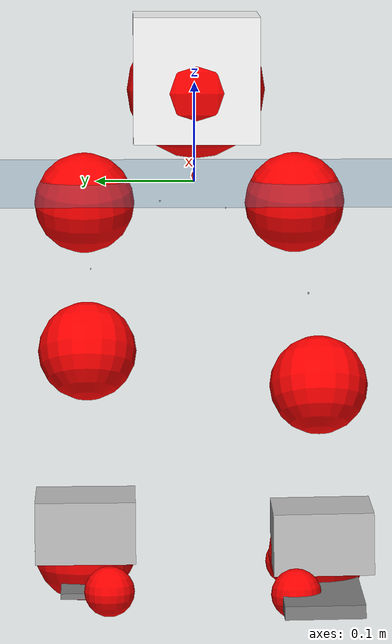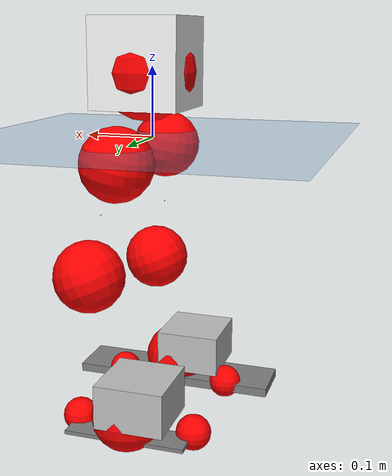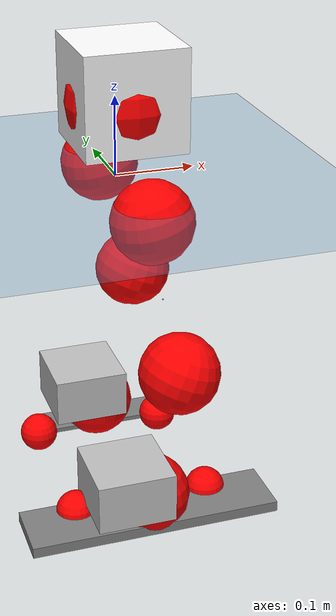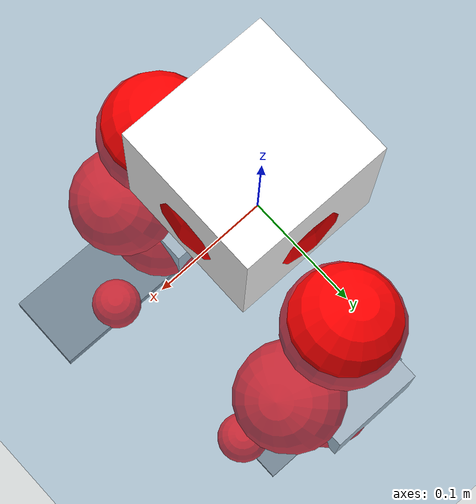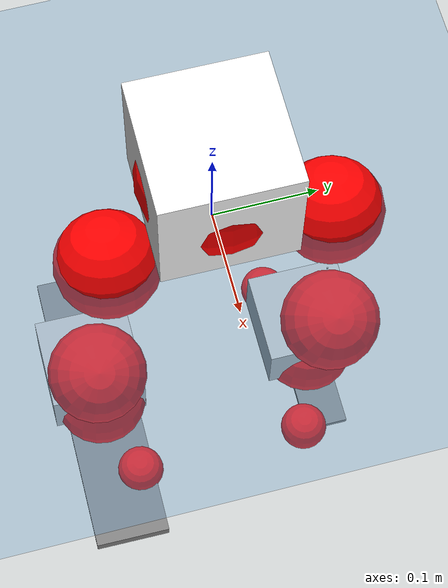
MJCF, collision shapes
<mujoco model="pi_12dof_release_v1">
  <compiler angle="radian" assetdir="assets" balanceinertia="true" inertiafromgeom="false"/>

  <option timestep="0.005" density="1.2" viscosity="2e-05"/>

  <size nkey="1"/>

  <visual>
    <quality shadowsize="8192"/>
    <map shadowclip="0.5"/>
  </visual>

  <default>
    <default class="/">
      <joint armature="0.01" damping="0.01" frictionloss="0.01"/>
      <geom contype="0" conaffinity="0" group="1" solref="-1000 -80"/>
      <site size="0.01 0.005 0.005" group="5"/>
      <general forcelimited="true" biastype="affine" gainprm="20" biasprm="0 -20 -0.5"/>
      <default class="foot">
        <geom size="0.0845 0.036 0.005" type="box" condim="6" group="4" priority="1" friction="0.9 0.2 0.2" solimp="0.015 1 0.005"/>
      </default>
      <default class="reward_collision_sphere">
        <geom group="5" rgba="1 0 0 1"/>
      </default>
    </default>
  </default>

  <asset>
    <texture type="skybox" colorspace="auto" name="//unnamed_texture_0" builtin="gradient" rgb1="0.95 0.95 0.95" rgb2="0.95 0.95 0.95" width="100" height="600"/>
    <texture type="2d" colorspace="auto" name="texplane" builtin="checker" rgb1="0.345 0.575 0.748" rgb2="0.345 0.575 0.748" markrgb="1 1 1" width="512" height="512"/>
    <material name="MatPlane" class="/" texture="texplane" texuniform="true" texrepeat="2 2" specular="0.9"/>
    <mesh name="baselink_1" class="/" file="baselink_1.STL"/>
    <mesh name="r_hip_pitch_link" class="/" file="r_hip_pitch_link.STL"/>
    <mesh name="r_hip_roll_link" class="/" file="r_hip_roll_link.STL"/>
    <mesh name="r_thigh_link" class="/" file="r_thigh_link.STL"/>
    <mesh name="r_calf_link" class="/" file="r_calf_link.STL"/>
    <mesh name="r_ankle_pitch_link" class="/" file="r_ankle_pitch_link.STL"/>
    <mesh name="r_ankle_roll_link" class="/" file="r_ankle_roll_link.STL"/>
    <mesh name="l_hip_pitch_link" class="/" file="l_hip_pitch_link.STL"/>
    <mesh name="l_hip_roll_link" class="/" file="l_hip_roll_link.STL"/>
    <mesh name="l_thigh_link" class="/" file="l_thigh_link.STL"/>
    <mesh name="l_calf_link" class="/" file="l_calf_link.STL"/>
    <mesh name="l_ankle_pitch_link" class="/" file="l_ankle_pitch_link.STL"/>
    <mesh name="l_ankle_roll_link" class="/" file="l_ankle_roll_link.STL"/>
  </asset>

  <worldbody>
    <geom name="floor" class="/" size="100 100 0.125" type="plane" group="0" material="MatPlane"/>
    <light name="toplight_shadow" class="/" pos="0 0 5" dir="0.0990148 0.0990148 -0.990148" type="directional" ambient="0.04 0.04 0.04" diffuse="0.55 0.55 0.55" specular="0.12 0.12 0.12"/>
    <light name="toplight_fill" class="/" pos="0 0 5" dir="0.0990148 0.0990148 -0.990148" type="directional" castshadow="false" ambient="0.04 0.04 0.04" diffuse="0.3 0.3 0.3" specular="0.08 0.08 0.08"/>
    <body name="trunk" pos="0.00939662 -0.00167441 0.00680834" quat="0.999991 -0.000355973 -0.00245936 -0.00337175">
      <inertial pos="0.0101393 -0.00741818 0.0497787" quat="0.729002 -0.0121651 -0.001933 0.6844" mass="4.23681" diaginertia="0.0276084 0.0323102 0.00891304"/>
      <joint name="//unnamed_joint_0" type="free"/>
      <geom name="//unnamed_geom_1" class="/" type="mesh" density="0" rgba="1 1 1 1" mesh="baselink_1"/>
      <geom name="//unnamed_geom_2" class="/" size="0.063495 0.063495 0.063495" pos="0 0 0.098024" type="box" rgba="1 1 1 1"/>
      <geom name="//unnamed_geom_3" class="reward_collision_sphere" size="0.0698445" pos="0 0 0.085771"/>
      <site name="imu" class="/" pos="-0.0370646 0.0732253 0.0246985" size="0.012699"/>
      <camera name="track" class="/" pos="0 -2.5846 0" quat="0.707107 0.707107 0 0" mode="trackcom"/>
      <camera name="ego_camera" class="/" pos="0.0969078 0 0.220554" quat="-0.5 -0.5 0.5 0.5"/>
      <body name="r_hip_pitch_link" pos="0.000845462 -0.0302041 -0.0350673" quat="0.992497 -0.00655251 -0.122089 -0.000943293">
        <inertial pos="0.00812004 -0.0720219 0.00342279" quat="-0.0444413 0.717646 -0.064289 0.692009" mass="0.632475" diaginertia="0.000330126 0.000301252 0.000175819"/>
        <joint name="r_hip_pitch_joint" class="/" pos="0 0 0" axis="0.022187 -0.999657 -0.0139191" stiffness="0.0612358" range="-1.72475 1.24499" armature="0.0173165" damping="0.0112126" frictionloss="0.0102592"/>
        <geom name="//unnamed_geom_4" class="/" type="mesh" density="0" rgba="0.75294 0.75294 0.75294 1" mesh="r_hip_pitch_link"/>
        <geom name="//unnamed_geom_5" class="/" size="0.00063495 0.00063495 0.00063495" type="box" rgba="0.75294 0.75294 0.75294 1"/>
        <body name="r_hip_roll_link" pos="0.0050798 -0.0704244 0.00323995" quat="1 -0.000234208 0.000236704 8.3225e-05">
          <inertial pos="-0.00189658 0.0130015 -0.0598344" quat="0.706824 -0.0820242 -0.0630534 0.699783" mass="0.817772" diaginertia="0.00117155 0.00109424 0.000343827"/>
          <joint name="r_hip_roll_joint" class="/" pos="0 0 0" axis="-0.998876 -0.0114 0.0460051" stiffness="0.0383506" range="-0.134398 0.247236" armature="0.00945698" damping="0.0315357" frictionloss="0.0155379"/>
          <geom name="//unnamed_geom_6" class="/" type="mesh" density="0" rgba="0.75294 0.75294 0.75294 1" mesh="r_hip_roll_link"/>
          <geom name="//unnamed_geom_7" class="/" size="0.00063495 0.00063495 0.00063495" type="box" rgba="0.75294 0.75294 0.75294 1"/>
          <geom name="//unnamed_geom_8" class="reward_collision_sphere" size="0.050796"/>
          <body name="r_thigh_link" pos="-0.0150877 -0.0134479 -0.0939059" quat="1 3.42808e-06 2.25122e-06 -3.74239e-06">
            <inertial pos="0.00410933 0.00892373 -0.0672147" quat="0.738999 0.673684 0.00225624 -0.005044" mass="0.196389" diaginertia="0.0004029 0.000357736 0.000163982"/>
            <joint name="r_thigh_joint" class="/" pos="0 0 0" axis="-0.0384429 0.0179522 -0.9991" range="-0.380237 0.481111" armature="0.0110541" damping="0.0535392" frictionloss="0.0220424"/>
            <geom name="//unnamed_geom_9" class="/" type="mesh" density="0" rgba="0.75294 0.75294 0.75294 1" mesh="r_thigh_link"/>
            <geom name="//unnamed_geom_10" class="/" size="0.00063495 0.00063495 0.00063495" type="box" rgba="0.75294 0.75294 0.75294 1"/>
            <body name="r_calf_link" pos="-0.0064478 -0.0103667 -0.0991435" quat="0.947632 4.94842e-05 0.319363 -2.03277e-05">
              <inertial pos="0.00325346 0.00746242 -0.0851872" quat="0.998137 -0.0263911 0.0232744 -0.0498468" mass="1.36912" diaginertia="0.0115144 0.0097847 0.00039061"/>
              <joint name="r_calf_joint" class="/" pos="0 0 0" axis="-0.00831398 -0.999912 0.010377" stiffness="0.0611989" range="-1.90084 0.638816" armature="0.0197635" damping="0" frictionloss="0.0122641"/>
              <geom name="//unnamed_geom_11" class="/" type="mesh" density="0" rgba="0.75294 0.75294 0.75294 1" mesh="r_calf_link"/>
              <geom name="//unnamed_geom_12" class="/" size="0.00063495 0.00063495 0.00063495" type="box" rgba="0.75294 0.75294 0.75294 1"/>
              <geom name="//unnamed_geom_13" class="reward_collision_sphere" size="0.050796"/>
              <body name="r_ankle_pitch_link" pos="-0.00640112 0.00136526 -0.160964" quat="0.97973 -0.00121942 -0.20032 0.000473102">
                <inertial pos="0.00409999 0.00395849 0.0133687" quat="0.0687262 0.700043 0.0306503 0.710124" mass="0.285405" diaginertia="0.00100857 0.000672017 0.000278219"/>
                <joint name="r_ankle_pitch_joint" class="/" pos="0 0 0" axis="-0.0240179 -0.999676 -0.00848469" range="-1.27233 0.219474" armature="0.0130625" damping="0.0130388" frictionloss="0.00528341"/>
                <geom name="//unnamed_geom_14" class="/" type="mesh" density="0" rgba="0.75294 0.75294 0.75294 1" mesh="r_ankle_pitch_link"/>
                <geom name="//unnamed_geom_15" class="/" size="0.0495261 0.050796 0.0317475" type="box" rgba="0.75294 0.75294 0.75294 1"/>
                <body name="r_ankle_roll_link" pos="0.0962066 0.00311861 0.00166144" quat="1 -0.000512279 -8.25766e-05 -0.000271658">
                  <inertial pos="-0.0332906 0.000983633 -0.0327193" quat="0.535945 0.450303 0.451994 0.552893" mass="1.42261" diaginertia="0.00449953 0.00361674 0.00107264"/>
                  <joint name="r_ankle_roll_joint" class="/" pos="0 0 0" axis="-0.998077 -0.0619856 -0.000424936" range="-0.326419 0.385748" armature="0.0215463" damping="0" frictionloss="0.0173845"/>
                  <geom name="//unnamed_geom_16" class="/" type="mesh" density="0" rgba="0.75294 0.75294 0.75294 1" mesh="r_ankle_roll_link"/>
                  <geom name="//unnamed_geom_17" class="/" type="mesh" rgba="0.75294 0.75294 0.75294 1" mesh="r_ankle_roll_link"/>
                  <geom name="right_foot" class="foot" size="0.160434 0.0401901 0.00684502" pos="-0.0658973 0 -0.0539132"/>
                  <geom name="//unnamed_geom_19" class="reward_collision_sphere" size="0.050796" pos="-0.0646052 0 -0.024506"/>
                  <geom name="//unnamed_geom_20" class="reward_collision_sphere" size="0.025398" pos="0.0193816 0.025846 -0.049012"/>
                  <geom name="//unnamed_geom_21" class="reward_collision_sphere" size="0.025398" pos="-0.155052 0.025846 -0.049012"/>
                  <site name="right_foot" class="foot" pos="-0.0658973 0 -0.0539132" size="0.012699"/>
                </body>
              </body>
            </body>
          </body>
        </body>
      </body>
      <body name="l_hip_pitch_link" pos="0.00216131 0.0366045 -0.0277952" quat="0.992259 0.000611044 -0.124183 0.0005485">
        <inertial pos="0.00161666 0.0707564 0.012117" quat="-0.0329856 0.709175 0.0307516 0.703589" mass="0.684474" diaginertia="0.000401517 0.000427465 0.000280753"/>
        <joint name="l_hip_pitch_joint" class="/" pos="0 0 0" axis="0.0367965 0.999304 0.00609729" range="-1.44385 1.74394" armature="0.00594995" damping="0.0112082" frictionloss="0.0138588"/>
        <geom name="//unnamed_geom_22" class="/" type="mesh" density="0" rgba="0.75294 0.75294 0.75294 1" mesh="l_hip_pitch_link"/>
        <geom name="//unnamed_geom_23" class="/" size="0.00063495 0.00063495 0.00063495" type="box" rgba="0.75294 0.75294 0.75294 1"/>
        <body name="l_hip_roll_link" pos="-0.00112178 0.0767752 -0.00161139" quat="1 -0.000643373 0.000409902 0.000137704">
          <inertial pos="0.00931649 -0.00163905 -0.0599513" quat="0.673917 -0.127888 -0.0815185 0.723074" mass="0.760333" diaginertia="0.00129686 0.000935548 0.000381155"/>
          <joint name="l_hip_roll_joint" class="/" pos="0 0 0" axis="-0.999922 0.0113796 0.0050872" range="-0.23887 -0.0901924" armature="0.0175054" damping="0.0799435" frictionloss="0.012459"/>
          <geom name="//unnamed_geom_24" class="/" type="mesh" density="0" rgba="0.75294 0.75294 0.75294 1" mesh="l_hip_roll_link"/>
          <geom name="//unnamed_geom_25" class="/" size="0.00063495 0.00063495 0.00063495" type="box" rgba="0.75294 0.75294 0.75294 1"/>
          <geom name="//unnamed_geom_26" class="reward_collision_sphere" size="0.050796"/>
          <body name="l_thigh_link" pos="0.00795524 -0.00585208 -0.0749962" quat="1 2.55665e-05 -2.1611e-05 -2.3495e-05">
            <inertial pos="-0.00756123 0.00648722 -0.0670325" quat="0.656851 0.752524 0.0156647 0.0448166" mass="0.26333" diaginertia="0.000450032 0.000322887 0.000172124"/>
            <joint name="l_thigh_joint" class="/" pos="0 0 0" axis="0.000266011 -0.00915275 -0.999958" stiffness="0.0698799" range="-0.587498 0.442069" armature="0.0136293" damping="0" frictionloss="0.0135673"/>
            <geom name="//unnamed_geom_27" class="/" type="mesh" density="0" rgba="0.75294 0.75294 0.75294 1" mesh="l_thigh_link"/>
            <geom name="//unnamed_geom_28" class="/" size="0.00063495 0.00063495 0.00063495" type="box" rgba="0.75294 0.75294 0.75294 1"/>
            <body name="l_calf_link" pos="-0.00462725 0.0040779 -0.0893643" quat="0.947253 -0.0020485 0.320479 0.000985897">
              <inertial pos="0.000761539 -0.00711338 -0.0760729" quat="0.999983 0.00234853 0.000361652 0.00524274" mass="1.81177" diaginertia="0.0152962 0.0152839 0.000571584"/>
              <joint name="l_calf_joint" class="/" pos="0 0 0" axis="0.000131205 1 0.00044431" range="-0.93536 1.40359" armature="0.0129785" damping="0" frictionloss="0.00976358"/>
              <geom name="//unnamed_geom_29" class="/" type="mesh" density="0" rgba="0.75294 0.75294 0.75294 1" mesh="l_calf_link"/>
              <geom name="//unnamed_geom_30" class="/" size="0.00063495 0.00063495 0.00063495" type="box" rgba="0.75294 0.75294 0.75294 1"/>
              <geom name="//unnamed_geom_31" class="reward_collision_sphere" size="0.050796"/>
              <body name="l_ankle_pitch_link" pos="-0.00242088 0.00265073 -0.184661" quat="0.980045 -0.000130392 -0.198776 -4.49616e-05">
                <inertial pos="0.0142298 -0.0104666 -0.00160668" quat="0.00272578 0.706023 0.0033458 0.708176" mass="0.465168" diaginertia="0.00116217 0.000918517 0.000325593"/>
                <joint name="l_ankle_pitch_joint" class="/" pos="0 0 0" axis="-0.000761652 1 0.000274142" stiffness="0.00147954" range="-0.255695 1.35116" armature="0.0188703" damping="0.00796816" frictionloss="0.0108191"/>
                <geom name="//unnamed_geom_32" class="/" type="mesh" density="0" rgba="0.75294 0.75294 0.75294 1" mesh="l_ankle_pitch_link"/>
                <geom name="//unnamed_geom_33" class="/" size="0.0495261 0.050796 0.0317475" type="box" rgba="0.75294 0.75294 0.75294 1"/>
                <body name="l_ankle_roll_link" pos="0.0838862 0.00166827 -0.00578525" quat="0.999999 -0.000529098 0.000670233 -0.000521033">
                  <inertial pos="-0.0356424 -0.00181057 -0.0194262" quat="0.554327 0.433922 0.430797 0.564665" mass="1.32571" diaginertia="0.00468416 0.00416055 0.000866182"/>
                  <joint name="l_ankle_roll_joint" class="/" pos="0 0 0" axis="-0.999785 -0.0195437 -0.006973" range="-0.243334 0.154956" armature="0.00653716" damping="0.00321473" frictionloss="0.0129359"/>
                  <geom name="//unnamed_geom_34" class="/" type="mesh" density="0" rgba="0.75294 0.75294 0.75294 1" mesh="l_ankle_roll_link"/>
                  <geom name="//unnamed_geom_35" class="/" type="mesh" rgba="0.75294 0.75294 0.75294 1" mesh="l_ankle_roll_link"/>
                  <geom name="left_foot" class="foot" size="0.0886597 0.0232359 0.00292819" pos="-0.0658973 0 -0.0539132"/>
                  <geom name="//unnamed_geom_37" class="reward_collision_sphere" size="0.050796" pos="-0.0646052 0 -0.024506"/>
                  <geom name="//unnamed_geom_38" class="reward_collision_sphere" size="0.025398" pos="0.0193816 -0.025846 -0.049012"/>
                  <geom name="//unnamed_geom_39" class="reward_collision_sphere" size="0.025398" pos="-0.155052 -0.025846 -0.049012"/>
                  <site name="left_foot" class="foot" pos="-0.0658973 0 -0.0539132" size="0.012699"/>
                </body>
              </body>
            </body>
          </body>
        </body>
      </body>
    </body>
  </worldbody>

  <contact>
    <pair class="/" geom1="floor" geom2="right_foot" name="//unnamed_contact_1"/>
    <pair class="/" geom1="floor" geom2="left_foot" name="//unnamed_contact_0"/>
  </contact>

  <actuator>
    <general name="r_hip_pitch_joint" class="/" joint="r_hip_pitch_joint" forcerange="-26.1404 26.1404" gainprm="24.781" biasprm="0 -24.781 -0.694538"/>
    <general name="r_hip_roll_joint" class="/" joint="r_hip_roll_joint" forcerange="-38.6034 38.6034" gainprm="24.781" biasprm="0 -24.781 -0.694538"/>
    <general name="r_thigh_joint" class="/" joint="r_thigh_joint" forcerange="-19.6739 19.6739" gainprm="24.781" biasprm="0 -24.781 -0.694538"/>
    <general name="r_calf_joint" class="/" joint="r_calf_joint" forcerange="-31.0623 31.0623" gainprm="24.781" biasprm="0 -24.781 -0.694538"/>
    <general name="r_ankle_pitch_joint" class="/" joint="r_ankle_pitch_joint" forcerange="-21.628 21.628" gainprm="24.781" biasprm="0 -24.781 -0.694538"/>
    <general name="r_ankle_roll_joint" class="/" joint="r_ankle_roll_joint" forcerange="-19.342 19.342" gainprm="24.781" biasprm="0 -24.781 -0.694538"/>
    <general name="l_hip_pitch_joint" class="/" joint="l_hip_pitch_joint" forcerange="-24.5045 24.5045" gainprm="24.781" biasprm="0 -24.781 -0.694538"/>
    <general name="l_hip_roll_joint" class="/" joint="l_hip_roll_joint" forcerange="-15.3415 15.3415" gainprm="24.781" biasprm="0 -24.781 -0.694538"/>
    <general name="l_thigh_joint" class="/" joint="l_thigh_joint" forcerange="-39.1178 39.1178" gainprm="24.781" biasprm="0 -24.781 -0.694538"/>
    <general name="l_calf_joint" class="/" joint="l_calf_joint" forcerange="-26.0561 26.0561" gainprm="24.781" biasprm="0 -24.781 -0.694538"/>
    <general name="l_ankle_pitch_joint" class="/" joint="l_ankle_pitch_joint" forcerange="-18.6458 18.6458" gainprm="24.781" biasprm="0 -24.781 -0.694538"/>
    <general name="l_ankle_roll_joint" class="/" joint="l_ankle_roll_joint" forcerange="-11.6367 11.6367" gainprm="24.781" biasprm="0 -24.781 -0.694538"/>
  </actuator>

  <sensor>
    <gyro site="imu" name="imu_angular_velocity"/>
    <velocimeter site="imu" name="imu_linear_velocity"/>
    <framelinvel objtype="site" objname="left_foot" name="left_foot_global_linear_velocity"/>
    <framelinvel objtype="site" objname="right_foot" name="right_foot_global_linear_velocity"/>
  </sensor>

  <keyframe>
    <key name="home" qpos="0 0 0.291 1 0 0 0 0.4 0 0 -0.8 0.4 0 -0.4 0 0 0.8 -0.4 0"/>
  </keyframe>
</mujoco>
